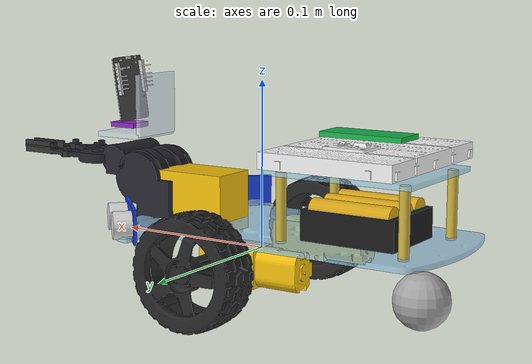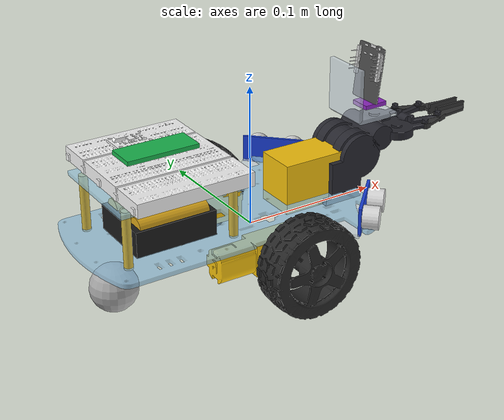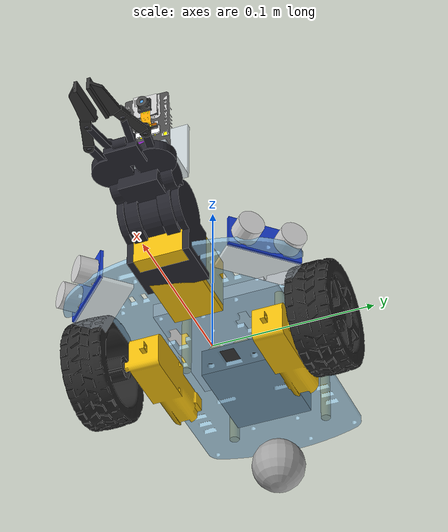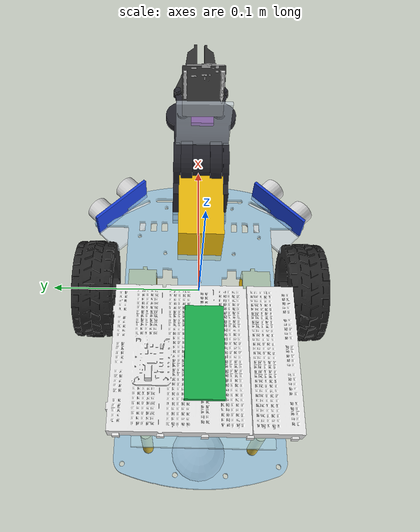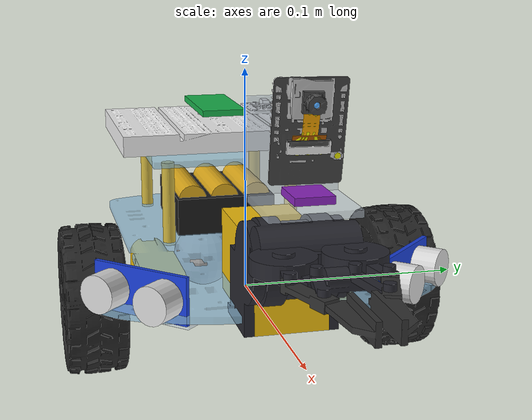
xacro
<?xml version="1.0"?>
<robot name="cleanupbot" xmlns:xacro="http://www.ros.org/wiki/xacro">

  <!-- ===== Dimensions from config.py & physical build ===== -->
  <xacro:property name="wheel_radius" value="0.033"/>
  <xacro:property name="wheel_width" value="0.025"/>
  <xacro:property name="wheel_separation" value="0.140"/>
  <xacro:property name="wheel_mass" value="0.05"/>

  <xacro:property name="chassis_length" value="0.207"/>
  <xacro:property name="chassis_width" value="0.100"/>
  <xacro:property name="chassis_mass" value="0.50"/>
  <!-- Chassis center when rotated so curved edge is forward (+X) -->
  <xacro:property name="chassis_x" value="-0.0265"/>
  <xacro:property name="chassis_z" value="0.0128"/>

  <!-- Rear caster wheel (mounted under the rear wing section) -->
  <xacro:property name="caster_radius" value="0.0165"/>
  <xacro:property name="caster_x" value="-0.105"/>

  <!-- Gripper hinge pin offset from axle midpoint (front curved edge) -->
  <!-- Located 7cm above ground (ground at -0.033m -> Z = +0.037m, 3cm above chassis front-top) -->
  <xacro:property name="joint_x" value="0.080"/>
  <xacro:property name="joint_z" value="0.037"/>

  <!-- Rear electronics platform & battery center (4cm above chassis plate) -->
  <xacro:property name="rear_x" value="-0.070"/>
  <xacro:property name="platform_z" value="0.053"/>

  <!-- Meshes path: resolves to absolute file URI -->
  <xacro:property name="mesh_dir" value="file://$(find robot_sim)/urdf/meshes"/>

  <!-- ===== Inertia helpers ===== -->
  <xacro:macro name="box_inertia" params="m x y z">
    <inertia ixx="${m*(y*y+z*z)/12}" ixy="0" ixz="0"
             iyy="${m*(x*x+z*z)/12}" iyz="0"
             izz="${m*(x*x+y*y)/12}"/>
  </xacro:macro>
  <xacro:macro name="cylinder_inertia" params="m r h">
    <inertia ixx="${m*(3*r*r+h*h)/12}" ixy="0" ixz="0"
             iyy="${m*(3*r*r+h*h)/12}" iyz="0"
             izz="${m*r*r/2}"/>
  </xacro:macro>

  <!-- ===== Base footprint & Base Link ===== -->
  <link name="base_footprint"/>
  <joint name="base_footprint_joint" type="fixed">
    <parent link="base_footprint"/>
    <child link="base_link"/>
    <origin xyz="0 0 0" rpy="0 0 0"/>
  </joint>

  <link name="base_link">
    <!-- Acrylic chassis plate from CAD: rotated 180 deg so curved edge faces forward (+X) -->
    <visual name="chassis_plate">
      <origin xyz="0 0 0" rpy="0 0 3.14159"/>
      <geometry><mesh filename="${mesh_dir}/body_06.stl"/></geometry>
      <material name="acrylic_blue"><color rgba="0.62 0.81 0.93 0.75"/></material>
    </visual>

    <!-- TT DC gear motors & brackets underneath chassis -->
    <visual name="tt_motors">
      <origin xyz="0 0 0" rpy="0 0 3.14159"/>
      <geometry><mesh filename="${mesh_dir}/body_05.stl"/></geometry>
      <material name="motor_yellow"><color rgba="0.95 0.75 0.05 1.0"/></material>
    </visual>

    <!-- Chassis collision & inertial -->
    <collision>
      <origin xyz="${chassis_x} 0 ${chassis_z}"/>
      <geometry><box size="${chassis_length} ${chassis_width} 0.04"/></geometry>
    </collision>
    <inertial>
      <!-- CoM placed toward rear (-0.035m) reflecting rear battery and electronics -->
      <origin xyz="-0.035 0 0.020"/>
      <mass value="${chassis_mass}"/>
      <xacro:box_inertia m="${chassis_mass}" x="${chassis_length}" y="${chassis_width}" z="0.04"/>
    </inertial>
  </link>

  <!-- ===== Drive wheels ===== -->
  <xacro:macro name="drive_wheel" params="side y_sign">
    <link name="${side}_wheel_link">
      <visual>
        <geometry><mesh filename="${mesh_dir}/wheel_${side}_01.stl"/></geometry>
        <material name="tire_black"><color rgba="0.15 0.15 0.15 1"/></material>
      </visual>
      <collision>
        <geometry><sphere radius="${wheel_radius}"/></geometry>
      </collision>
      <inertial>
        <mass value="${wheel_mass}"/>
        <xacro:cylinder_inertia m="${wheel_mass}" r="${wheel_radius}" h="${wheel_width}"/>
      </inertial>
    </link>
    <joint name="${side}_wheel_joint" type="continuous">
      <parent link="base_link"/>
      <child link="${side}_wheel_link"/>
      <origin xyz="0 ${y_sign*wheel_separation/2} 0" rpy="${-pi/2} 0 0"/>
      <axis xyz="0 0 1"/>
    </joint>
    <gazebo reference="${side}_wheel_link">
      <mu1>1.0</mu1>
      <mu2>1.0</mu2>
    </gazebo>
  </xacro:macro>

  <xacro:drive_wheel side="left" y_sign="1"/>
  <xacro:drive_wheel side="right" y_sign="-1"/>

  <!-- ===== Rear Caster Ball (Under the rear wing deck) ===== -->
  <link name="caster_link">
    <visual>
      <geometry><sphere radius="${caster_radius}"/></geometry>
      <material name="caster_metal"><color rgba="0.65 0.65 0.65 1"/></material>
    </visual>
    <collision>
      <geometry><sphere radius="${caster_radius}"/></geometry>
    </collision>
    <inertial>
      <mass value="0.025"/>
      <inertia ixx="1e-6" ixy="0" ixz="0" iyy="1e-6" iyz="0" izz="1e-6"/>
    </inertial>
  </link>
  <joint name="caster_joint" type="fixed">
    <parent link="base_link"/>
    <child link="caster_link"/>
    <origin xyz="${caster_x} 0 ${caster_radius - wheel_radius}"/>
  </joint>
  <gazebo reference="caster_link">
    <mu1>0.001</mu1>
    <mu2>0.001</mu2>
  </gazebo>

  <!-- ===== Rear 6xAA Battery Pack (Between chassis and raised platform) ===== -->
  <link name="battery_pack">
    <!-- Battery holder box -->
    <visual>
      <origin xyz="0 0 0.010" rpy="0 0 0"/>
      <geometry><box size="0.058 0.048 0.018"/></geometry>
      <material name="battery_case_black"><color rgba="0.1 0.1 0.1 1"/></material>
    </visual>
    <!-- 6x AA battery cells -->
    <visual>
      <origin xyz="0 0.016 0.018" rpy="0 1.5708 0"/>
      <geometry><cylinder radius="0.0068" length="0.050"/></geometry>
      <material name="battery_gold"><color rgba="0.85 0.65 0.1 1"/></material>
    </visual>
    <visual>
      <origin xyz="0 0.0 0.018" rpy="0 1.5708 0"/>
      <geometry><cylinder radius="0.0068" length="0.050"/></geometry>
      <material name="battery_gold"/>
    </visual>
    <visual>
      <origin xyz="0 -0.016 0.018" rpy="0 1.5708 0"/>
      <geometry><cylinder radius="0.0068" length="0.050"/></geometry>
      <material name="battery_gold"/>
    </visual>
    <collision>
      <origin xyz="0 0 0.014" rpy="0 0 0"/>
      <geometry><box size="0.058 0.048 0.026"/></geometry>
    </collision>
    <inertial>
      <!-- 6x AA cells (~24g each) + holder = ~0.150 kg providing rear counterbalance -->
      <mass value="0.150"/>
      <origin xyz="0 0 0.014" rpy="0 0 0"/>
      <xacro:box_inertia m="0.150" x="0.058" y="0.048" z="0.026"/>
    </inertial>
  </link>
  <joint name="battery_pack_joint" type="fixed">
    <parent link="base_link"/>
    <child link="battery_pack"/>
    <origin xyz="${rear_x} 0.0 0.013" rpy="0 0 0"/>
  </joint>

  <!-- ===== Rear Standoff Platform (4cm above chassis) ===== -->
  <link name="rear_platform">
    <!-- Platform deck plate -->
    <visual>
      <origin xyz="0 0 0" rpy="0 0 0"/>
      <geometry><box size="0.090 0.075 0.003"/></geometry>
      <material name="platform_acrylic"><color rgba="0.65 0.85 0.95 0.7"/></material>
    </visual>
    <!-- 4x Standoff brass pillars (4cm tall connecting chassis to platform) -->
    <visual>
      <origin xyz="0.038 0.030 -0.020" rpy="0 0 0"/>
      <geometry><cylinder radius="0.003" length="0.040"/></geometry>
      <material name="brass_standoff"><color rgba="0.80 0.70 0.25 1"/></material>
    </visual>
    <visual>
      <origin xyz="0.038 -0.030 -0.020" rpy="0 0 0"/>
      <geometry><cylinder radius="0.003" length="0.040"/></geometry>
      <material name="brass_standoff"/>
    </visual>
    <visual>
      <origin xyz="-0.038 0.030 -0.020" rpy="0 0 0"/>
      <geometry><cylinder radius="0.003" length="0.040"/></geometry>
      <material name="brass_standoff"/>
    </visual>
    <visual>
      <origin xyz="-0.038 -0.030 -0.020" rpy="0 0 0"/>
      <geometry><cylinder radius="0.003" length="0.040"/></geometry>
      <material name="brass_standoff"/>
    </visual>
    <collision>
      <geometry><box size="0.090 0.075 0.003"/></geometry>
    </collision>
    <inertial>
      <mass value="0.040"/>
      <origin xyz="0 0 0"/>
      <inertia ixx="1e-5" ixy="0" ixz="0" iyy="1e-5" iyz="0" izz="1e-5"/>
    </inertial>
  </link>
  <joint name="rear_platform_joint" type="fixed">
    <parent link="base_link"/>
    <child link="rear_platform"/>
    <origin xyz="${rear_x} 0.0 ${platform_z}" rpy="0 0 0"/>
  </joint>

  <!-- ===== Breadboard on top of platform (Using other student's authentic CAD mesh) ===== -->
  <link name="breadboard">
    <!-- Authentic breadboard mesh from student's CAD model -->
    <visual name="breadboard_cad">
      <origin xyz="0 0 0.002" rpy="0 0 0"/>
      <geometry><mesh filename="${mesh_dir}/breadboard.stl"/></geometry>
      <material name="breadboard_white"><color rgba="0.95 0.95 0.95 1.0"/></material>
    </visual>
    <!-- Microcontroller PCB (Pico) on top of breadboard -->
    <visual name="pico_pcb">
      <origin xyz="0 0 0.018" rpy="0 0 0"/>
      <geometry><box size="0.051 0.021 0.003"/></geometry>
      <material name="pico_green"><color rgba="0.10 0.70 0.30 1.0"/></material>
    </visual>
    <collision>
      <origin xyz="0 0 0.010" rpy="0 0 0"/>
      <geometry><box size="0.085 0.055 0.020"/></geometry>
    </collision>
    <inertial>
      <mass value="0.050"/>
      <origin xyz="0 0 0.010"/>
      <inertia ixx="1e-5" ixy="0" ixz="0" iyy="1e-5" iyz="0" izz="1e-5"/>
    </inertial>
  </link>
  <joint name="breadboard_joint" type="fixed">
    <parent link="rear_platform"/>
    <child link="breadboard"/>
    <origin xyz="0.0 0.0 0.002" rpy="0 0 0"/>
  </joint>

  <!-- ===== FRONT: OWI-535 Gripper Base (Yellow Gearbox Bolted to Chassis) ===== -->
  <link name="gripper_base">
    <!-- Static pivot bracket matching ground-truth CAD (3cm diameter shaft) -->
    <visual name="gripper_base_cad">
      <origin xyz="0 0 0" rpy="0 0 0"/>
      <geometry><mesh filename="${mesh_dir}/gripper_base.stl"/></geometry>
      <material name="claw_collar"><color rgba="0.15 0.15 0.18 1"/></material>
    </visual>
    <!-- Yellow motor gearbox casing: 3cm wide by 6cm long, bolted to chassis deck -->
    <visual name="tilt_motor_box">
      <origin xyz="-0.030 0 -0.012" rpy="0 0 0"/>
      <geometry><box size="0.060 0.030 0.036"/></geometry>
      <material name="yellow_housing"><color rgba="0.95 0.75 0.05 1"/></material>
    </visual>
    <collision>
      <origin xyz="-0.030 0 -0.012" rpy="0 0 0"/>
      <geometry><box size="0.060 0.030 0.036"/></geometry>
    </collision>
    <inertial>
      <mass value="0.065"/>
      <origin xyz="-0.020 0 0" rpy="0 0 0"/>
      <inertia ixx="0.00005" ixy="0" ixz="0" iyy="0.00005" iyz="0" izz="0.00005"/>
    </inertial>
  </link>
  <joint name="gripper_base_joint" type="fixed">
    <parent link="base_link"/>
    <child link="gripper_base"/>
    <origin xyz="${joint_x} 0.0 ${joint_z}" rpy="0 0 0"/>
  </joint>

  <!-- ===== Gripper Head (Tilting Assembly: Transverse Motor & Gear Hubs) ===== -->
  <link name="gripper_head">
    <!-- Clean transverse motor housing, horizontal gear hubs, and 4-bar linkage bars -->
    <visual name="gripper_head_cad">
      <origin xyz="0 0 0" rpy="0 0 0"/>
      <geometry><mesh filename="${mesh_dir}/gripper_head.stl"/></geometry>
      <material name="motor_black"><color rgba="0.15 0.15 0.18 1"/></material>
    </visual>
    <!-- Clear acrylic L-bracket for eye-in-hand camera and IMU -->
    <visual name="camera_bracket_shelf">
      <origin xyz="0.015 0 0.025" rpy="0 0 0"/>
      <geometry><box size="0.032 0.035 0.003"/></geometry>
      <material name="acrylic_clear"><color rgba="0.85 0.90 0.95 0.6"/></material>
    </visual>
    <visual name="camera_bracket_back">
      <origin xyz="-0.001 0 0.044" rpy="0 0 0"/>
      <geometry><box size="0.003 0.035 0.038"/></geometry>
      <material name="acrylic_clear"><color rgba="0.85 0.90 0.95 0.6"/></material>
    </visual>
    <collision>
      <origin xyz="0.030 0 0.010" rpy="0 0 0"/>
      <geometry><box size="0.060 0.050 0.025"/></geometry>
    </collision>
    <inertial>
      <mass value="0.045"/>
      <origin xyz="0.030 0 0.010" rpy="0 0 0"/>
      <inertia ixx="0.00003" ixy="0" ixz="0" iyy="0.00003" iyz="0" izz="0.00003"/>
    </inertial>
  </link>

  <!-- Gripper Tilt Joint (Revolute around Y, pitches head and eye-in-hand sensors up/down) -->
  <joint name="gripper_tilt_joint" type="revolute">
    <parent link="gripper_base"/>
    <child link="gripper_head"/>
    <origin xyz="0 0 0" rpy="0 0 0"/>
    <axis xyz="0 1 0"/>
    <limit lower="-0.6" upper="0.4" effort="1.5" velocity="1.0"/>
    <dynamics damping="0.05" friction="0.05"/>
  </joint>

  <!-- ===== Authentic Articulated Claw Fingers (Left and Right) ===== -->
  <link name="gripper_claw_left">
    <visual>
      <geometry><mesh filename="${mesh_dir}/gripper_claw_left.stl"/></geometry>
      <material name="claw_mat"><color rgba="0.20 0.20 0.20 1"/></material>
    </visual>
    <collision>
      <origin xyz="0.022 -0.002 -0.005" rpy="0 0 0"/>
      <geometry><box size="0.045 0.008 0.016"/></geometry>
    </collision>
    <inertial>
      <mass value="0.012"/>
      <origin xyz="0.020 0 0" rpy="0 0 0"/>
      <inertia ixx="1e-5" ixy="0" ixz="0" iyy="1e-5" iyz="0" izz="1e-5"/>
    </inertial>
  </link>
  <joint name="gripper_claw_left_joint" type="prismatic">
    <parent link="gripper_head"/>
    <child link="gripper_claw_left"/>
    <origin xyz="0.0580 0.0170 0.0100" rpy="0 0 0"/>
    <axis xyz="0 1 0"/>
    <limit lower="0.0" upper="0.015" effort="5.0" velocity="0.05"/>
    <dynamics damping="0.05" friction="0.05"/>
  </joint>

  <link name="gripper_claw_right">
    <visual>
      <geometry><mesh filename="${mesh_dir}/gripper_claw_right.stl"/></geometry>
      <material name="claw_mat"><color rgba="0.20 0.20 0.20 1"/></material>
    </visual>
    <collision>
      <origin xyz="0.022 0.002 0.0" rpy="0 0 0"/>
      <geometry><box size="0.045 0.008 0.016"/></geometry>
    </collision>
    <inertial>
      <mass value="0.012"/>
      <origin xyz="0.020 0 0" rpy="0 0 0"/>
      <inertia ixx="1e-5" ixy="0" ixz="0" iyy="1e-5" iyz="0" izz="1e-5"/>
    </inertial>
  </link>
  <joint name="gripper_claw_right_joint" type="prismatic">
    <parent link="gripper_head"/>
    <child link="gripper_claw_right"/>
    <origin xyz="0.0580 -0.0170 0.0100" rpy="0 0 0"/>
    <axis xyz="0 -1 0"/>
    <limit lower="0.0" upper="0.015" effort="5.0" velocity="0.05"/>
    <dynamics damping="0.05" friction="0.05"/>
  </joint>

  <!-- ===== EYE-IN-HAND CAMERA (Mounted to gripper_head, tilts with head) ===== -->
  <link name="camera_link">
    <!-- Detailed ESP32-CAM assembly from CAD meshes -->
    <visual name="cam_body2">
      <origin xyz="-0.120 0 -0.045" rpy="0 0 0"/>
      <geometry><mesh filename="${mesh_dir}/body_02.stl"/></geometry>
      <material name="cam_c2"><color rgba="0.80 0.80 0.80 1"/></material>
    </visual>
    <visual name="cam_body3">
      <origin xyz="-0.120 0 -0.045" rpy="0 0 0"/>
      <geometry><mesh filename="${mesh_dir}/body_03.stl"/></geometry>
      <material name="cam_c3"><color rgba="0.29 0.29 0.29 1"/></material>
    </visual>
    <visual name="cam_body7">
      <origin xyz="-0.120 0 -0.045" rpy="0 0 0"/>
      <geometry><mesh filename="${mesh_dir}/body_07.stl"/></geometry>
      <material name="cam_c7"><color rgba="1.00 1.00 0.00 1"/></material>
    </visual>
    <visual name="cam_body8">
      <origin xyz="-0.120 0 -0.045" rpy="0 0 0"/>
      <geometry><mesh filename="${mesh_dir}/body_08.stl"/></geometry>
      <material name="cam_c8"><color rgba="1.00 1.00 1.00 1"/></material>
    </visual>
    <visual name="cam_body9">
      <origin xyz="-0.120 0 -0.045" rpy="0 0 0"/>
      <geometry><mesh filename="${mesh_dir}/body_09.stl"/></geometry>
      <material name="cam_c9"><color rgba="0.44 0.44 0.44 1"/></material>
    </visual>
    <visual name="cam_body10">
      <origin xyz="-0.120 0 -0.045" rpy="0 0 0"/>
      <geometry><mesh filename="${mesh_dir}/body_10.stl"/></geometry>
      <material name="cam_c10"><color rgba="0.33 0.67 1.00 1"/></material>
    </visual>
    <visual name="cam_body12">
      <origin xyz="-0.120 0 -0.045" rpy="0 0 0"/>
      <geometry><mesh filename="${mesh_dir}/body_12.stl"/></geometry>
      <material name="cam_c12"><color rgba="1.00 0.67 0.00 1"/></material>
    </visual>
    <visual name="cam_body13">
      <origin xyz="-0.120 0 -0.045" rpy="0 0 0"/>
      <geometry><mesh filename="${mesh_dir}/body_13.stl"/></geometry>
      <material name="cam_c13"><color rgba="0.67 0.33 0.00 1"/></material>
    </visual>

    <inertial>
      <mass value="0.015"/>
      <origin xyz="0 0 0"/>
      <inertia ixx="1e-6" ixy="0" ixz="0" iyy="1e-6" iyz="0" izz="1e-6"/>
    </inertial>
  </link>
  <joint name="camera_joint" type="fixed">
    <parent link="gripper_head"/>
    <child link="camera_link"/>
    <!-- Positioned matching camera_calibration.json & physical true height (12.3cm above floor): -->
    <!-- X = 0.020m rel to hinge (10cm from axle), Z = 0.053m rel to hinge (12.3cm from floor) -->
    <!-- Pitch bias 8.39 deg down, roll bias -1.01 deg -->
    <origin xyz="0.020 0.0 0.053" rpy="-0.0176 0.1464 0"/>
  </joint>

  <!-- ===== EYE-IN-HAND IMU (BNO085 Mounted on acrylic shelf of gripper_head) ===== -->
  <link name="imu_link">
    <visual>
      <geometry><box size="0.018 0.015 0.003"/></geometry>
      <material name="imu_purple"><color rgba="0.55 0.15 0.75 1"/></material>
    </visual>
    <inertial>
      <mass value="0.003"/>
      <origin xyz="0 0 0" rpy="0 0 0"/>
      <inertia ixx="1e-7" ixy="0" ixz="0" iyy="1e-7" iyz="0" izz="1e-7"/>
    </inertial>
  </link>
  <joint name="imu_joint" type="fixed">
    <parent link="gripper_head"/>
    <child link="imu_link"/>
    <origin xyz="0.020 0.0 0.030" rpy="0 0 0"/>
  </joint>

  <!-- ===== Front Corner Ultrasonic Sensors HC-SR04 (Angled 45 deg outward on front corners) ===== -->
  <link name="ultrasonic_sensor">
    <!-- Right front corner acrylic bracket & HC-SR04 sensor angled -45 deg outward -->
    <visual name="sonar_right_bracket">
      <origin xyz="-0.010 0 -0.010" rpy="0 0 0"/>
      <geometry><box size="0.020 0.045 0.003"/></geometry>
      <material name="acrylic_clear"><color rgba="0.85 0.90 0.95 0.6"/></material>
    </visual>
    <visual name="sonar_right_pcb">
      <origin xyz="0 0 0" rpy="0 0 0"/>
      <geometry><box size="0.002 0.045 0.020"/></geometry>
      <material name="sonar_pcb"><color rgba="0.10 0.25 0.85 1"/></material>
    </visual>
    <visual name="sonar_right_tx">
      <origin xyz="0.006 0.013 0" rpy="0 1.5708 0"/>
      <geometry><cylinder radius="0.008" length="0.012"/></geometry>
      <material name="sonar_transducer"><color rgba="0.85 0.85 0.85 1"/></material>
    </visual>
    <visual name="sonar_right_rx">
      <origin xyz="0.006 -0.013 0" rpy="0 1.5708 0"/>
      <geometry><cylinder radius="0.008" length="0.012"/></geometry>
      <material name="sonar_transducer"/>
    </visual>
    <inertial>
      <mass value="0.010"/>
      <origin xyz="0 0 0"/>
      <inertia ixx="1e-6" ixy="0" ixz="0" iyy="1e-6" iyz="0" izz="1e-6"/>
    </inertial>
  </link>
  <joint name="ultrasonic_joint" type="fixed">
    <parent link="base_link"/>
    <child link="ultrasonic_sensor"/>
    <origin xyz="0.055 -0.055 0.020" rpy="0 0 -0.7854"/>
  </joint>

  <!-- Left front corner ultrasonic sensor angled +45 deg outward -->
  <link name="ultrasonic_sensor_left">
    <visual name="sonar_left_bracket">
      <origin xyz="-0.010 0 -0.010" rpy="0 0 0"/>
      <geometry><box size="0.020 0.045 0.003"/></geometry>
      <material name="acrylic_clear"><color rgba="0.85 0.90 0.95 0.6"/></material>
    </visual>
    <visual name="sonar_left_pcb">
      <origin xyz="0 0 0" rpy="0 0 0"/>
      <geometry><box size="0.002 0.045 0.020"/></geometry>
      <material name="sonar_pcb"/>
    </visual>
    <visual name="sonar_left_tx">
      <origin xyz="0.006 0.013 0" rpy="0 1.5708 0"/>
      <geometry><cylinder radius="0.008" length="0.012"/></geometry>
      <material name="sonar_transducer"/>
    </visual>
    <visual name="sonar_left_rx">
      <origin xyz="0.006 -0.013 0" rpy="0 1.5708 0"/>
      <geometry><cylinder radius="0.008" length="0.012"/></geometry>
      <material name="sonar_transducer"/>
    </visual>
    <inertial>
      <mass value="0.010"/>
      <origin xyz="0 0 0"/>
      <inertia ixx="1e-6" ixy="0" ixz="0" iyy="1e-6" iyz="0" izz="1e-6"/>
    </inertial>
  </link>
  <joint name="ultrasonic_left_joint" type="fixed">
    <parent link="base_link"/>
    <child link="ultrasonic_sensor_left"/>
    <origin xyz="0.055 0.055 0.020" rpy="0 0 0.7854"/>
  </joint>

  <!-- ===== Gazebo Harmonic Sensors ===== -->
  <gazebo reference="imu_link">
    <sensor name="imu_sensor" type="imu">
      <always_on>true</always_on>
      <update_rate>50</update_rate>
      <topic>/imu</topic>
      <imu>
        <angular_velocity>
          <z><noise type="gaussian"><mean>0</mean><stddev>0.002</stddev></noise></z>
        </angular_velocity>
        <linear_acceleration>
          <x><noise type="gaussian"><mean>0</mean><stddev>0.02</stddev></noise></x>
          <y><noise type="gaussian"><mean>0</mean><stddev>0.02</stddev></noise></y>
        </linear_acceleration>
      </imu>
    </sensor>
  </gazebo>

  <gazebo reference="camera_link">
    <sensor name="camera_sensor" type="camera">
      <always_on>true</always_on>
      <update_rate>10</update_rate>
      <topic>/camera/image_raw</topic>
      <camera>
        <!-- Matching VisionMCP/camera_calibration.json: FOV 57.0 deg (0.9948 rad), 1024x768 -->
        <horizontal_fov>0.9948</horizontal_fov>
        <image>
          <width>1024</width>
          <height>768</height>
          <format>R8G8B8</format>
        </image>
        <clip>
          <near>0.05</near>
          <far>20</far>
        </clip>
        <distortion>
          <k1>-0.250523</k1>
          <k2>1.055211</k2>
          <k3>-1.331916</k3>
          <p1>0.011043</p1>
          <p2>-0.015481</p2>
          <center>0.4633 0.5326</center>
        </distortion>
      </camera>
    </sensor>
  </gazebo>

  <!-- ===== Gazebo Harmonic Plugins ===== -->
  <gazebo>
    <plugin filename="gz-sim-diff-drive-system"
            name="gz::sim::systems::DiffDrive">
      <left_joint>left_wheel_joint</left_joint>
      <right_joint>right_wheel_joint</right_joint>
      <wheel_separation>${wheel_separation}</wheel_separation>
      <wheel_radius>${wheel_radius}</wheel_radius>
      <max_linear_velocity>0.3</max_linear_velocity>
      <min_linear_velocity>-0.3</min_linear_velocity>
      <max_angular_velocity>1.5</max_angular_velocity>
      <min_angular_velocity>-1.5</min_angular_velocity>
      <max_linear_acceleration>1.0</max_linear_acceleration>
      <min_linear_acceleration>-1.0</min_linear_acceleration>
      <topic>/cmd_vel</topic>
      <odom_topic>/odom</odom_topic>
      <tf_topic>/tf</tf_topic>
      <frame_id>odom</frame_id>
      <child_frame_id>base_link</child_frame_id>
      <odom_publish_frequency>30</odom_publish_frequency>
    </plugin>

    <plugin filename="gz-sim-joint-state-publisher-system"
            name="gz::sim::systems::JointStatePublisher">
      <topic>/joint_states</topic>
    </plugin>

    <!-- Ground Truth Odometry: Publishes true physical pose to detect collisions independent of wheel slip -->
    <plugin filename="gz-sim-odometry-publisher-system"
            name="gz::sim::systems::OdometryPublisher">
      <odom_topic>/model/cleanupbot/odometry</odom_topic>
      <odom_frame>odom</odom_frame>
      <robot_base_frame>base_footprint</robot_base_frame>
      <dimensions>3</dimensions>
    </plugin>
  </gazebo>

</robot>
